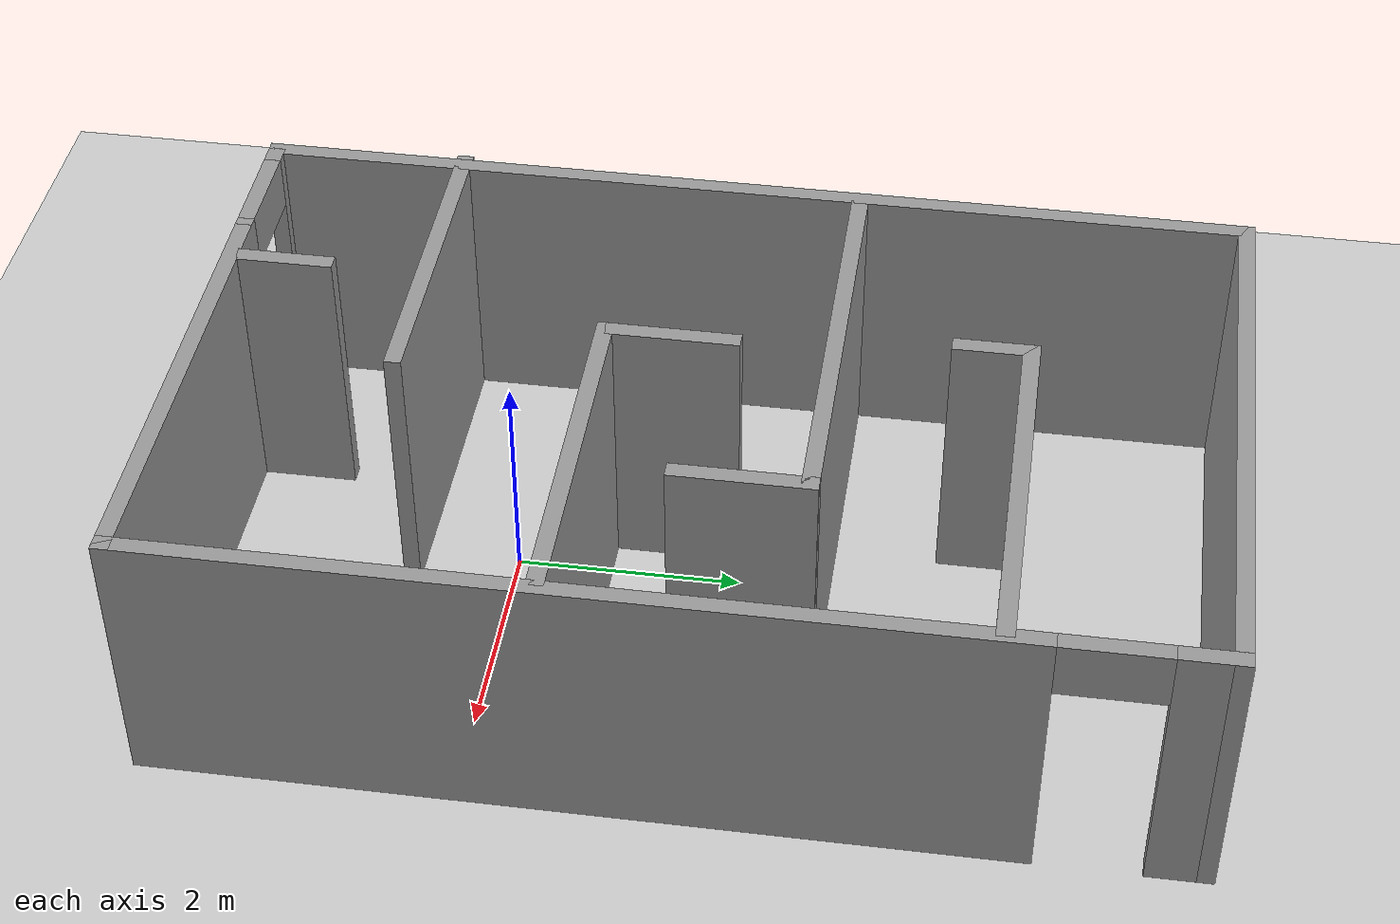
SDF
<sdf version="1.7">
 <world name="default">
  <light name="sun" type="directional">
   <pose>0 0 10 0 -0 0</pose>
   <diffuse>0.8 0.8 0.8 1</diffuse>
   <specular>0.2 0.2 0.2 1</specular>
   <attenuation>
    <range>1000</range>
    <constant>0.9</constant>
    <linear>0.01</linear>
    <quadratic>0.001</quadratic>
   </attenuation>
   <direction>-0.5 0.1 -0.9</direction>
   <spot><inner_angle>0</inner_angle><outer_angle>0</outer_angle><falloff>0</falloff></spot>
  </light>
  <model name="ground_plane">
   <static>1</static>
   <link name="link">
    <collision name="collision">
     <geometry><plane><normal>0 0 1</normal><size>100 100</size></plane></geometry>
     <surface>
      <contact><collide_bitmask>65535</collide_bitmask></contact>
      <friction><ode><mu>100</mu><mu2>50</mu2></ode></friction>
     </surface>
    </collision>
    <visual name="visual">
     <cast_shadows>0</cast_shadows>
     <geometry><plane><normal>0 0 1</normal><size>100 100</size></plane></geometry>
     <material>
      <script><uri>file://media/materials/scripts/gazebo.material</uri><name>Gazebo/Grey</name></script>
     </material>
    </visual>
   </link>
  </model>
  <gravity>0 0 -9.8</gravity>
  <magnetic_field>6e-06 2.3e-05 -4.2e-05</magnetic_field>
  <atmosphere type="adiabatic"/>
  <physics type="ode">
   <max_step_size>0.001</max_step_size>
   <real_time_factor>1</real_time_factor>
   <real_time_update_rate>1000</real_time_update_rate>
  </physics>
  <scene><ambient>0.4 0.4 0.4 1</ambient><background>0.7 0.7 0.7 1</background><shadows>1</shadows></scene>
  <audio><device>default</device></audio>
  <spherical_coordinates>
   <surface_model>EARTH_WGS84</surface_model>
   <latitude_deg>0</latitude_deg>
   <longitude_deg>0</longitude_deg>
   <elevation>0</elevation>
   <heading_deg>0</heading_deg>
  </spherical_coordinates>
  <model name="Labirinto">
   <pose>0.11725 1.765 0 0 -0 0</pose>
   <link name="Wall_0">
    <collision name="Wall_0_Collision">
     <geometry><box><size>4.25 0.15 2.5</size></box></geometry>
     <pose>0 0 1.25 0 -0 0</pose>
    </collision>
    <visual name="Wall_0_Visual">
     <pose>0 0 1.25 0 -0 0</pose>
     <geometry><box><size>4.25 0.15 2.5</size></box></geometry>
     <material>
      <script><uri>file://media/materials/scripts/gazebo.material</uri><name>Gazebo/Grey</name></script>
      <ambient>1 1 1 1</ambient>
     </material>
     <meta><layer>0</layer></meta>
    </visual>
    <pose>0.65275 -4.425 0 0 -0 0</pose>
   </link>
   <link name="Wall_1">
    <pose>2.70275 0 0 0 -0 1.5708</pose>
    <visual name="Wall_1_Visual_0">
     <pose>-0.73837 0 1.25 0 -0 0</pose>
     <geometry><box><size>7.52326 0.15 2.5</size></box></geometry>
     <material>
      <script><uri>file://media/materials/scripts/gazebo.material</uri><name>Gazebo/Grey</name></script>
      <ambient>1 1 1 1</ambient>
     </material>
     <meta><layer>0</layer></meta>
    </visual>
    <collision name="Wall_1_Collision_0">
     <geometry><box><size>7.52326 0.15 2.5</size></box></geometry>
     <pose>-0.73837 0 1.25 0 -0 0</pose>
    </collision>
    <visual name="Wall_1_Visual_1">
     <pose>4.21163 0 1.25 0 -0 0</pose>
     <geometry><box><size>0.576739 0.15 2.5</size></box></geometry>
     <material>
      <script><uri>file://media/materials/scripts/gazebo.material</uri><name>Gazebo/Grey</name></script>
      <ambient>1 1 1 1</ambient>
     </material>
     <meta><layer>0</layer></meta>
    </visual>
    <collision name="Wall_1_Collision_1">
     <geometry><box><size>0.576739 0.15 2.5</size></box></geometry>
     <pose>4.21163 0 1.25 0 -0 0</pose>
    </collision>
    <visual name="Wall_1_Visual_2">
     <pose>3.47326 0 2.25 0 -0 0</pose>
     <geometry><box><size>0.9 0.15 0.5</size></box></geometry>
     <material>
      <script><uri>file://media/materials/scripts/gazebo.material</uri><name>Gazebo/Grey</name></script>
      <ambient>1 1 1 1</ambient>
     </material>
     <meta><layer>0</layer></meta>
    </visual>
    <collision name="Wall_1_Collision_2">
     <geometry><box><size>0.9 0.15 0.5</size></box></geometry>
     <pose>3.47326 0 2.25 0 -0 0</pose>
    </collision>
   </link>
   <link name="Wall_10">
    <collision name="Wall_10_Collision">
     <geometry><box><size>3.25 0.15 2.5</size></box></geometry>
     <pose>0 0 1.25 0 -0 0</pose>
    </collision>
    <visual name="Wall_10_Visual">
     <pose>0 0 1.25 0 -0 0</pose>
     <geometry><box><size>3.25 0.15 2.5</size></box></geometry>
     <material>
      <script><uri>file://media/materials/scripts/gazebo.material</uri><name>Gazebo/Grey</name></script>
      <ambient>1 1 1 1</ambient>
     </material>
     <meta><layer>0</layer></meta>
    </visual>
    <pose>1.06025 -0.9885 0 0 -0 3.14159</pose>
   </link>
   <link name="Wall_11">
    <collision name="Wall_11_Collision">
     <geometry><box><size>1.25 0.15 2.5</size></box></geometry>
     <pose>0 0 1.25 0 -0 0</pose>
    </collision>
    <visual name="Wall_11_Visual">
     <pose>0 0 1.25 0 -0 0</pose>
     <geometry><box><size>1.25 0.15 2.5</size></box></geometry>
     <material>
      <script><uri>file://media/materials/scripts/gazebo.material</uri><name>Gazebo/Grey</name></script>
      <ambient>1 1 1 1</ambient>
     </material>
     <meta><layer>0</layer></meta>
    </visual>
    <pose>-0.48975 -0.4385 0 0 -0 1.5708</pose>
   </link>
   <link name="Wall_13">
    <collision name="Wall_13_Collision">
     <geometry><box><size>4 0.15 2.5</size></box></geometry>
     <pose>0 0 1.25 0 -0 0</pose>
    </collision>
    <visual name="Wall_13_Visual">
     <pose>0 0 1.25 0 -0 0</pose>
     <geometry><box><size>4 0.15 2.5</size></box></geometry>
     <material>
      <script><uri>file://media/materials/scripts/gazebo.material</uri><name>Gazebo/Grey</name></script>
      <ambient>1 1 1 1</ambient>
     </material>
     <meta><layer>0</layer></meta>
    </visual>
    <pose>-0.70875 0.978 0 0 -0 0</pose>
   </link>
   <link name="Wall_14">
    <collision name="Wall_14_Collision">
     <geometry><box><size>1.25 0.15 2.5</size></box></geometry>
     <pose>0 0 1.25 0 -0 0</pose>
    </collision>
    <visual name="Wall_14_Visual">
     <pose>0 0 1.25 0 -0 0</pose>
     <geometry><box><size>1.25 0.15 2.5</size></box></geometry>
     <material>
      <script><uri>file://media/materials/scripts/gazebo.material</uri><name>Gazebo/Grey</name></script>
      <ambient>1 1 1 1</ambient>
     </material>
     <meta><layer>0</layer></meta>
    </visual>
    <pose>1.21625 0.428 0 0 -0 -1.5708</pose>
   </link>
   <link name="Wall_16">
    <collision name="Wall_16_Collision">
     <geometry><box><size>3.5 0.15 2.5</size></box></geometry>
     <pose>0 0 1.25 0 -0 0</pose>
    </collision>
    <visual name="Wall_16_Visual">
     <pose>0 0 1.25 0 -0 0</pose>
     <geometry><box><size>3.5 0.15 2.5</size></box></geometry>
     <material>
      <script><uri>file://media/materials/scripts/gazebo.material</uri><name>Gazebo/Grey</name></script>
      <ambient>1 1 1 1</ambient>
     </material>
     <meta><layer>0</layer></meta>
    </visual>
    <pose>0.96975 2.634 0 0 -0 3.14159</pose>
   </link>
   <link name="Wall_17">
    <collision name="Wall_17_Collision">
     <geometry><box><size>0.75 0.15 2.5</size></box></geometry>
     <pose>0 0 1.25 0 -0 0</pose>
    </collision>
    <visual name="Wall_17_Visual">
     <pose>0 0 1.25 0 -0 0</pose>
     <geometry><box><size>0.75 0.15 2.5</size></box></geometry>
     <material>
      <script><uri>file://media/materials/scripts/gazebo.material</uri><name>Gazebo/Grey</name></script>
      <ambient>1 1 1 1</ambient>
     </material>
     <meta><layer>0</layer></meta>
    </visual>
    <pose>-0.70525 2.334 0 0 -0 -1.5708</pose>
   </link>
   <link name="Wall_2">
    <collision name="Wall_2_Collision">
     <geometry><box><size>5.5 0.15 2.5</size></box></geometry>
     <pose>0 0 1.25 0 -0 0</pose>
    </collision>
    <visual name="Wall_2_Visual">
     <pose>0 0 1.25 0 -0 0</pose>
     <geometry><box><size>5.5 0.15 2.5</size></box></geometry>
     <material>
      <script><uri>file://media/materials/scripts/gazebo.material</uri><name>Gazebo/Grey</name></script>
      <ambient>1 1 1 1</ambient>
     </material>
     <meta><layer>0</layer></meta>
    </visual>
    <pose>0.02775 4.425 0 0 -0 3.14159</pose>
   </link>
   <link name="Wall_3">
    <collision name="Wall_3_Collision">
     <geometry><box><size>9 0.15 2.5</size></box></geometry>
     <pose>0 0 1.25 0 -0 0</pose>
    </collision>
    <visual name="Wall_3_Visual">
     <pose>0 0 1.25 0 -0 0</pose>
     <geometry><box><size>9 0.15 2.5</size></box></geometry>
     <material>
      <script><uri>file://media/materials/scripts/gazebo.material</uri><name>Gazebo/Grey</name></script>
      <ambient>1 1 1 1</ambient>
     </material>
     <meta><layer>0</layer></meta>
    </visual>
    <pose>-2.64725 0 0 0 -0 -1.5708</pose>
   </link>
   <link name="Wall_4">
    <pose>-1.84725 -4.425 0 0 -0 0</pose>
    <visual name="Wall_4_Visual_0">
     <pose>-0.74525 0 1.25 0 -0 0</pose>
     <geometry><box><size>0.2595 0.15 2.5</size></box></geometry>
     <material>
      <script><uri>file://media/materials/scripts/gazebo.material</uri><name>Gazebo/Grey</name></script>
      <ambient>1 1 1 1</ambient>
     </material>
     <meta><layer>0</layer></meta>
    </visual>
    <collision name="Wall_4_Collision_0">
     <geometry><box><size>0.2595 0.15 2.5</size></box></geometry>
     <pose>-0.74525 0 1.25 0 -0 0</pose>
    </collision>
    <visual name="Wall_4_Visual_1">
     <pose>0.57975 0 1.25 0 -0 0</pose>
     <geometry><box><size>0.5905 0.15 2.5</size></box></geometry>
     <material>
      <script><uri>file://media/materials/scripts/gazebo.material</uri><name>Gazebo/Grey</name></script>
      <ambient>1 1 1 1</ambient>
     </material>
     <meta><layer>0</layer></meta>
    </visual>
    <collision name="Wall_4_Collision_1">
     <geometry><box><size>0.5905 0.15 2.5</size></box></geometry>
     <pose>0.57975 0 1.25 0 -0 0</pose>
    </collision>
    <visual name="Wall_4_Visual_2">
     <pose>-0.1655 0 2.25 0 -0 0</pose>
     <geometry><box><size>0.9 0.15 0.5</size></box></geometry>
     <material>
      <script><uri>file://media/materials/scripts/gazebo.material</uri><name>Gazebo/Grey</name></script>
      <ambient>1 1 1 1</ambient>
     </material>
     <meta><layer>0</layer></meta>
    </visual>
    <collision name="Wall_4_Collision_2">
     <geometry><box><size>0.9 0.15 0.5</size></box></geometry>
     <pose>-0.1655 0 2.25 0 -0 0</pose>
    </collision>
   </link>
   <link name="Wall_6">
    <collision name="Wall_6_Collision">
     <geometry><box><size>3 0.15 2.5</size></box></geometry>
     <pose>0 0 1.25 0 -0 0</pose>
    </collision>
    <visual name="Wall_6_Visual">
     <pose>0 0 1.25 0 -0 0</pose>
     <geometry><box><size>3 0.15 2.5</size></box></geometry>
     <material>
      <script><uri>file://media/materials/scripts/gazebo.material</uri><name>Gazebo/Grey</name></script>
      <ambient>1 1 1 1</ambient>
     </material>
     <meta><layer>0</layer></meta>
    </visual>
    <pose>-1.27775 -2.679 0 0 -0 0</pose>
   </link>
   <link name="Wall_8">
    <collision name="Wall_8_Collision">
     <geometry><box><size>1 0.15 2.5</size></box></geometry>
     <pose>0 0 1.25 0 -0 0</pose>
    </collision>
    <visual name="Wall_8_Visual">
     <pose>0 0 1.25 0 -0 0</pose>
     <geometry><box><size>1 0.15 2.5</size></box></geometry>
     <material>
      <script><uri>file://media/materials/scripts/gazebo.material</uri><name>Gazebo/Grey</name></script>
      <ambient>1 1 1 1</ambient>
     </material>
     <meta><layer>0</layer></meta>
    </visual>
    <pose>-1.04725 -4 0 0 -0 1.5708</pose>
   </link>
   <static>1</static>
  </model>
 </world>
</sdf>
